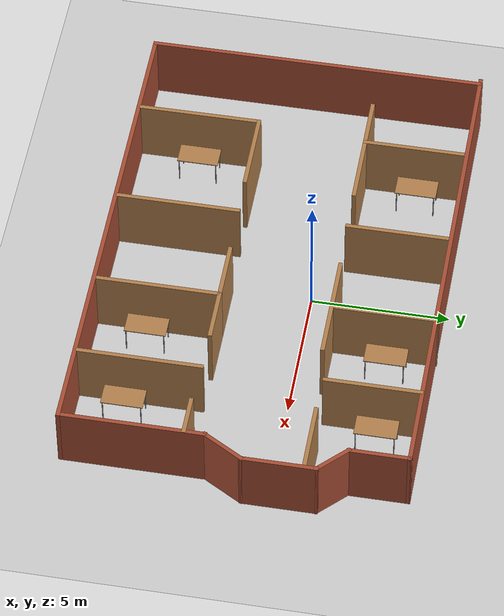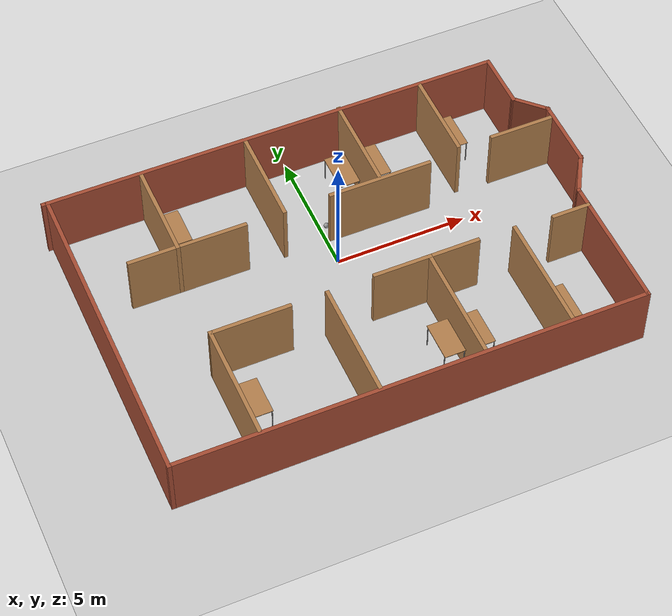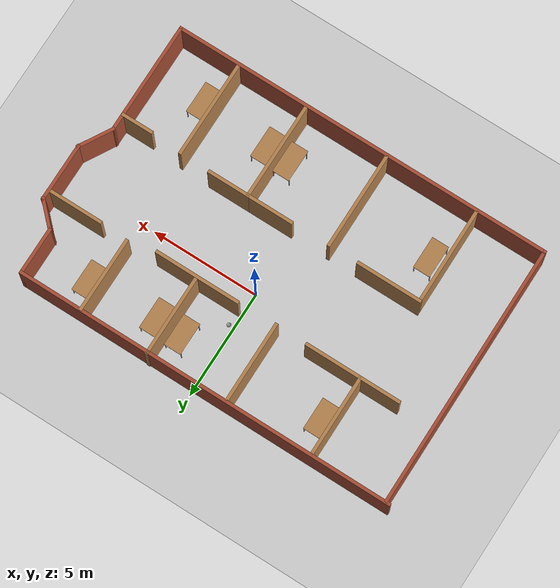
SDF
<sdf version="1.6">
 <world name="default">
  <light name="sun" type="directional">
   <pose>0 0 10 0 -0 0</pose>
   <diffuse>0.8 0.8 0.8 1</diffuse>
   <specular>0.2 0.2 0.2 1</specular>
   <attenuation>
    <range>1000</range>
    <constant>0.9</constant>
    <linear>0.01</linear>
    <quadratic>0.001</quadratic>
   </attenuation>
   <direction>-0.5 0.1 -0.9</direction>
  </light>
  <model name="ground_plane">
   <static>1</static>
   <link name="link">
    <collision name="collision">
     <geometry><plane><normal>0 0 1</normal><size>100 100</size></plane></geometry>
     <surface>
      <contact><collide_bitmask>65535</collide_bitmask></contact>
      <friction><ode><mu>100</mu><mu2>50</mu2></ode></friction>
     </surface>
    </collision>
    <visual name="visual">
     <cast_shadows>0</cast_shadows>
     <geometry><plane><normal>0 0 1</normal><size>100 100</size></plane></geometry>
     <material>
      <script><uri>file://media/materials/scripts/gazebo.material</uri><name>Gazebo/Grey</name></script>
     </material>
    </visual>
   </link>
  </model>
  <gravity>0 0 -9.8</gravity>
  <magnetic_field>6e-06 2.3e-05 -4.2e-05</magnetic_field>
  <atmosphere type="adiabatic"/>
  <physics name="default_physics" default="0" type="ode">
   <max_step_size>0.001</max_step_size>
   <real_time_factor>1</real_time_factor>
   <real_time_update_rate>1000</real_time_update_rate>
  </physics>
  <scene><ambient>0.4 0.4 0.4 1</ambient><background>0.7 0.7 0.7 1</background><shadows>1</shadows></scene>
  <spherical_coordinates>
   <surface_model>EARTH_WGS84</surface_model>
   <latitude_deg>0</latitude_deg>
   <longitude_deg>0</longitude_deg>
   <elevation>0</elevation>
   <heading_deg>0</heading_deg>
  </spherical_coordinates>
  <model name="mybuilding">
   <pose>-0.077377 -1.31008 0 0 -0 0</pose>
   <link name="Wall_10">
    <collision name="Wall_10_Collision">
     <geometry><box><size>17.75 0.15 2.5</size></box></geometry>
     <pose>0 0 1.25 0 -0 0</pose>
    </collision>
    <visual name="Wall_10_Visual">
     <pose>0 0 1.25 0 -0 0</pose>
     <geometry><box><size>17.75 0.15 2.5</size></box></geometry>
     <material>
      <script><uri>file://media/materials/scripts/gazebo.material</uri><name>Gazebo/Bricks</name></script>
      <ambient>1 1 1 1</ambient>
     </material>
     <meta><layer>0</layer></meta>
    </visual>
    <pose>-0.49283 6.05016 0 0 -0 0</pose>
   </link>
   <link name="Wall_11">
    <collision name="Wall_11_Collision">
     <geometry><box><size>2.25 0.15 2.5</size></box></geometry>
     <pose>0 0 1.25 0 -0 0</pose>
    </collision>
    <visual name="Wall_11_Visual">
     <pose>0 0 1.25 0 -0 0</pose>
     <geometry><box><size>2.25 0.15 2.5</size></box></geometry>
     <material>
      <script><uri>file://media/materials/scripts/gazebo.material</uri><name>Gazebo/Bricks</name></script>
      <ambient>1 1 1 1</ambient>
     </material>
     <meta><layer>0</layer></meta>
    </visual>
    <pose>8.30717 5.00016 0 0 0 -1.5708</pose>
   </link>
   <link name="Wall_12">
    <collision name="Wall_12_Collision">
     <geometry><box><size>1.5 0.15 2.5</size></box></geometry>
     <pose>0 0 1.25 0 -0 0</pose>
    </collision>
    <visual name="Wall_12_Visual">
     <pose>0 0 1.25 0 -0 0</pose>
     <geometry><box><size>1.5 0.15 2.5</size></box></geometry>
     <material>
      <script><uri>file://media/materials/scripts/gazebo.material</uri><name>Gazebo/Bricks</name></script>
      <ambient>1 1 1 1</ambient>
     </material>
     <meta><layer>0</layer></meta>
    </visual>
    <pose>8.78447 3.47287 0 0 0 -0.785398</pose>
   </link>
   <link name="Wall_13">
    <collision name="Wall_13_Collision">
     <geometry><box><size>2.75 0.15 2.5</size></box></geometry>
     <pose>0 0 1.25 0 -0 0</pose>
    </collision>
    <visual name="Wall_13_Visual">
     <pose>0 0 1.25 0 -0 0</pose>
     <geometry><box><size>2.75 0.15 2.5</size></box></geometry>
     <material>
      <script><uri>file://media/materials/scripts/gazebo.material</uri><name>Gazebo/Bricks</name></script>
      <ambient>1 1 1 1</ambient>
     </material>
     <meta><layer>0</layer></meta>
    </visual>
    <pose>9.26177 1.69557 0 0 0 -1.5708</pose>
   </link>
   <link name="Wall_14">
    <collision name="Wall_14_Collision">
     <geometry><box><size>1.75 0.15 2.5</size></box></geometry>
     <pose>0 0 1.25 0 -0 0</pose>
    </collision>
    <visual name="Wall_14_Visual">
     <pose>0 0 1.25 0 -0 0</pose>
     <geometry><box><size>1.75 0.15 2.5</size></box></geometry>
     <material>
      <script><uri>file://media/materials/scripts/gazebo.material</uri><name>Gazebo/Bricks</name></script>
      <ambient>1 1 1 1</ambient>
     </material>
     <meta><layer>0</layer></meta>
    </visual>
    <pose>8.86176 -0.297251 0 0 0 -2.0944</pose>
   </link>
   <link name="Wall_15">
    <collision name="Wall_15_Collision">
     <geometry><box><size>5.25 0.15 2.5</size></box></geometry>
     <pose>0 0 1.25 0 -0 0</pose>
    </collision>
    <visual name="Wall_15_Visual">
     <pose>0 0 1.25 0 -0 0</pose>
     <geometry><box><size>5.25 0.15 2.5</size></box></geometry>
     <material>
      <script><uri>file://media/materials/scripts/gazebo.material</uri><name>Gazebo/Bricks</name></script>
      <ambient>1 1 1 1</ambient>
     </material>
     <meta><layer>0</layer></meta>
    </visual>
    <pose>8.46176 -3.54007 0 0 0 -1.5708</pose>
   </link>
   <link name="Wall_16">
    <collision name="Wall_16_Collision">
     <geometry><box><size>17.75 0.15 2.5</size></box></geometry>
     <pose>0 0 1.25 0 -0 0</pose>
    </collision>
    <visual name="Wall_16_Visual">
     <pose>0 0 1.25 0 -0 0</pose>
     <geometry><box><size>17.75 0.15 2.5</size></box></geometry>
     <material>
      <script><uri>file://media/materials/scripts/gazebo.material</uri><name>Gazebo/Bricks</name></script>
      <ambient>1 1 1 1</ambient>
     </material>
     <meta><layer>0</layer></meta>
    </visual>
    <pose>-0.338236 -6.09007 0 0 -0 3.14159</pose>
   </link>
   <link name="Wall_17">
    <collision name="Wall_17_Collision">
     <geometry><box><size>12.25 0.15 2.5</size></box></geometry>
     <pose>0 0 1.25 0 -0 0</pose>
    </collision>
    <visual name="Wall_17_Visual">
     <pose>0 0 1.25 0 -0 0</pose>
     <geometry><box><size>12.25 0.15 2.5</size></box></geometry>
     <material>
      <script><uri>file://media/materials/scripts/gazebo.material</uri><name>Gazebo/Bricks</name></script>
      <ambient>1 1 1 1</ambient>
     </material>
     <meta><layer>0</layer></meta>
    </visual>
    <pose>-9.13824 -0.040072 0 0 -0 1.5708</pose>
   </link>
   <link name="Wall_27">
    <collision name="Wall_27_Collision">
     <geometry><box><size>3.067 0.15 2.5</size></box></geometry>
     <pose>0 0 1.25 0 -0 0</pose>
    </collision>
    <visual name="Wall_27_Visual">
     <pose>0 0 1.25 0 -0 0</pose>
     <geometry><box><size>3.067 0.15 2.5</size></box></geometry>
     <material>
      <script><uri>file://media/materials/scripts/gazebo.material</uri><name>Gazebo/Wood</name></script>
      <ambient>1 1 1 1</ambient>
     </material>
     <meta><layer>0</layer></meta>
    </visual>
    <pose>-4.48112 -1.63592 0 0 -0 3.14159</pose>
   </link>
   <link name="Wall_28">
    <collision name="Wall_28_Collision">
     <geometry><box><size>4.5 0.15 2.5</size></box></geometry>
     <pose>0 0 1.25 0 -0 0</pose>
    </collision>
    <visual name="Wall_28_Visual">
     <pose>0 0 1.25 0 -0 0</pose>
     <geometry><box><size>4.5 0.15 2.5</size></box></geometry>
     <material>
      <script><uri>file://media/materials/scripts/gazebo.material</uri><name>Gazebo/Wood</name></script>
      <ambient>1 1 1 1</ambient>
     </material>
     <meta><layer>0</layer></meta>
    </visual>
    <pose>-5.93341 -3.81116 0 0 0 -1.56794</pose>
   </link>
   <link name="Wall_33">
    <collision name="Wall_33_Collision">
     <geometry><box><size>4.5 0.15 2.5</size></box></geometry>
     <pose>0 0 1.25 0 -0 0</pose>
    </collision>
    <visual name="Wall_33_Visual">
     <pose>0 0 1.25 0 -0 0</pose>
     <geometry><box><size>4.5 0.15 2.5</size></box></geometry>
     <material>
      <script><uri>file://media/materials/scripts/gazebo.material</uri><name>Gazebo/Wood</name></script>
      <ambient>1 1 1 1</ambient>
     </material>
     <meta><layer>0</layer></meta>
    </visual>
    <pose>-1.60627 -3.8114 0 0 0 -1.5708</pose>
   </link>
   <link name="Wall_36">
    <collision name="Wall_36_Collision">
     <geometry><box><size>4.5 0.15 2.5</size></box></geometry>
     <pose>0 0 1.25 0 -0 0</pose>
    </collision>
    <visual name="Wall_36_Visual">
     <pose>0 0 1.25 0 -0 0</pose>
     <geometry><box><size>4.5 0.15 2.5</size></box></geometry>
     <material>
      <script><uri>file://media/materials/scripts/gazebo.material</uri><name>Gazebo/Wood</name></script>
      <ambient>1 1 1 1</ambient>
     </material>
     <meta><layer>0</layer></meta>
    </visual>
    <pose>2.29548 -3.77093 0 0 0 -1.57075</pose>
   </link>
   <link name="Wall_40">
    <collision name="Wall_40_Collision">
     <geometry><box><size>4.5 0.15 2.5</size></box></geometry>
     <pose>0 0 1.25 0 -0 0</pose>
    </collision>
    <visual name="Wall_40_Visual">
     <pose>0 0 1.25 0 -0 0</pose>
     <geometry><box><size>4.5 0.15 2.5</size></box></geometry>
     <material>
      <script><uri>file://media/materials/scripts/gazebo.material</uri><name>Gazebo/Wood</name></script>
      <ambient>1 1 1 1</ambient>
     </material>
     <meta><layer>0</layer></meta>
    </visual>
    <pose>5.59482 -3.8114 0 0 0 -1.5708</pose>
   </link>
   <link name="Wall_45">
    <collision name="Wall_45_Collision">
     <geometry><box><size>2.25 0.15 2.5</size></box></geometry>
     <pose>0 0 1.25 0 -0 0</pose>
    </collision>
    <visual name="Wall_45_Visual">
     <pose>0 0 1.25 0 -0 0</pose>
     <geometry><box><size>2.25 0.15 2.5</size></box></geometry>
     <material>
      <script><uri>file://media/materials/scripts/gazebo.material</uri><name>Gazebo/Wood</name></script>
      <ambient>1 1 1 1</ambient>
     </material>
     <meta><layer>0</layer></meta>
    </visual>
    <pose>1.24538 -1.59592 0 0 -0 3.14159</pose>
   </link>
   <link name="Wall_47">
    <collision name="Wall_47_Collision">
     <geometry><box><size>2 0.15 2.5</size></box></geometry>
     <pose>0 0 1.25 0 -0 0</pose>
    </collision>
    <visual name="Wall_47_Visual">
     <pose>0 0 1.25 0 -0 0</pose>
     <geometry><box><size>2 0.15 2.5</size></box></geometry>
     <material>
      <script><uri>file://media/materials/scripts/gazebo.material</uri><name>Gazebo/Wood</name></script>
      <ambient>1 1 1 1</ambient>
     </material>
     <meta><layer>0</layer></meta>
    </visual>
    <pose>3.22038 -1.59592 0 0 -0 0</pose>
   </link>
   <link name="Wall_49">
    <collision name="Wall_49_Collision">
     <geometry><box><size>1.5 0.15 2.5</size></box></geometry>
     <pose>0 0 1.25 0 -0 0</pose>
    </collision>
    <visual name="Wall_49_Visual">
     <pose>0 0 1.25 0 -0 0</pose>
     <geometry><box><size>1.5 0.15 2.5</size></box></geometry>
     <material>
      <script><uri>file://media/materials/scripts/gazebo.material</uri><name>Gazebo/Wood</name></script>
      <ambient>1 1 1 1</ambient>
     </material>
     <meta><layer>0</layer></meta>
    </visual>
    <pose>7.76668 -1.71731 0 0 -0 0</pose>
   </link>
   <link name="Wall_51">
    <collision name="Wall_51_Collision">
     <geometry><box><size>3.5 0.15 2.5</size></box></geometry>
     <pose>0 0 1.25 0 -0 0</pose>
    </collision>
    <visual name="Wall_51_Visual">
     <pose>0 0 1.25 0 -0 0</pose>
     <geometry><box><size>3.5 0.15 2.5</size></box></geometry>
     <material>
      <script><uri>file://media/materials/scripts/gazebo.material</uri><name>Gazebo/Wood</name></script>
      <ambient>1 1 1 1</ambient>
     </material>
     <meta><layer>0</layer></meta>
    </visual>
    <pose>5.433 4.33471 0 0 0 -1.5708</pose>
   </link>
   <link name="Wall_53">
    <collision name="Wall_53_Collision">
     <geometry><box><size>2.5 0.15 2.5</size></box></geometry>
     <pose>0 0 1.25 0 -0 0</pose>
    </collision>
    <visual name="Wall_53_Visual">
     <pose>0 0 1.25 0 -0 0</pose>
     <geometry><box><size>2.5 0.15 2.5</size></box></geometry>
     <material>
      <script><uri>file://media/materials/scripts/gazebo.material</uri><name>Gazebo/Wood</name></script>
      <ambient>1 1 1 1</ambient>
     </material>
     <meta><layer>0</layer></meta>
    </visual>
    <pose>7.94303 2.57098 0 0 -0 0</pose>
   </link>
   <link name="Wall_55">
    <collision name="Wall_55_Collision">
     <geometry><box><size>4 0.15 2.5</size></box></geometry>
     <pose>0 0 1.25 0 -0 0</pose>
    </collision>
    <visual name="Wall_55_Visual">
     <pose>0 0 1.25 0 -0 0</pose>
     <geometry><box><size>4 0.15 2.5</size></box></geometry>
     <material>
      <script><uri>file://media/materials/scripts/gazebo.material</uri><name>Gazebo/Wood</name></script>
      <ambient>1 1 1 1</ambient>
     </material>
     <meta><layer>0</layer></meta>
    </visual>
    <pose>2.1875 2.3687 0 0 -0 3.14159</pose>
   </link>
   <link name="Wall_61">
    <collision name="Wall_61_Collision">
     <geometry><box><size>3.75 0.15 2.5</size></box></geometry>
     <pose>0 0 1.25 0 -0 0</pose>
    </collision>
    <visual name="Wall_61_Visual">
     <pose>0 0 1.25 0 -0 0</pose>
     <geometry><box><size>3.75 0.15 2.5</size></box></geometry>
     <material>
      <script><uri>file://media/materials/scripts/gazebo.material</uri><name>Gazebo/Wood</name></script>
      <ambient>1 1 1 1</ambient>
     </material>
     <meta><layer>0</layer></meta>
    </visual>
    <pose>2.19655 4.29007 0 0 -0 1.5708</pose>
   </link>
   <link name="Wall_64">
    <collision name="Wall_64_Collision">
     <geometry><box><size>3.75 0.15 2.5</size></box></geometry>
     <pose>0 0 1.25 0 -0 0</pose>
    </collision>
    <visual name="Wall_64_Visual">
     <pose>0 0 1.25 0 -0 0</pose>
     <geometry><box><size>3.75 0.15 2.5</size></box></geometry>
     <material>
      <script><uri>file://media/materials/scripts/gazebo.material</uri><name>Gazebo/Wood</name></script>
      <ambient>1 1 1 1</ambient>
     </material>
     <meta><layer>0</layer></meta>
    </visual>
    <pose>-1.56581 4.12825 0 0 -0 1.5708</pose>
   </link>
   <link name="Wall_66">
    <collision name="Wall_66_Collision">
     <geometry><box><size>4.5 0.15 2.5</size></box></geometry>
     <pose>0 0 1.25 0 -0 0</pose>
    </collision>
    <visual name="Wall_66_Visual">
     <pose>0 0 1.25 0 -0 0</pose>
     <geometry><box><size>4.5 0.15 2.5</size></box></geometry>
     <material>
      <script><uri>file://media/materials/scripts/gazebo.material</uri><name>Gazebo/Wood</name></script>
      <ambient>1 1 1 1</ambient>
     </material>
     <meta><layer>0</layer></meta>
    </visual>
    <pose>-5.23767 2.32825 0 0 -0 3.14159</pose>
   </link>
   <link name="Wall_70">
    <collision name="Wall_70_Collision">
     <geometry><box><size>3.75 0.15 2.5</size></box></geometry>
     <pose>0 0 1.25 0 -0 0</pose>
    </collision>
    <visual name="Wall_70_Visual">
     <pose>0 0 1.25 0 -0 0</pose>
     <geometry><box><size>3.75 0.15 2.5</size></box></geometry>
     <material>
      <script><uri>file://media/materials/scripts/gazebo.material</uri><name>Gazebo/Wood</name></script>
      <ambient>1 1 1 1</ambient>
     </material>
     <meta><layer>0</layer></meta>
    </visual>
    <pose>-5.61137 4.12825 0 0 -0 1.5708</pose>
   </link>
   <static>1</static>
  </model>
  <model name="table">
   <static>1</static>
   <link name="link">
    <collision name="surface">
     <pose>0 0 1 0 -0 0</pose>
     <geometry><box><size>1.5 0.8 0.03</size></box></geometry>
     <surface><friction><ode><mu>0.6</mu><mu2>0.6</mu2></ode></friction></surface>
    </collision>
    <visual name="visual1">
     <pose>0 0 1 0 -0 0</pose>
     <geometry><box><size>1.5 0.8 0.03</size></box></geometry>
     <material>
      <script><uri>file://media/materials/scripts/gazebo.material</uri><name>Gazebo/Wood</name></script>
     </material>
    </visual>
    <collision name="front_left_leg">
     <pose>0.68 0.38 0.5 0 -0 0</pose>
     <geometry><cylinder><radius>0.02</radius><length>1</length></cylinder></geometry>
    </collision>
    <visual name="front_left_leg">
     <pose>0.68 0.38 0.5 0 -0 0</pose>
     <geometry><cylinder><radius>0.02</radius><length>1</length></cylinder></geometry>
     <material>
      <script><uri>file://media/materials/scripts/gazebo.material</uri><name>Gazebo/Grey</name></script>
     </material>
    </visual>
    <collision name="front_right_leg">
     <pose>0.68 -0.38 0.5 0 -0 0</pose>
     <geometry><cylinder><radius>0.02</radius><length>1</length></cylinder></geometry>
    </collision>
    <visual name="front_right_leg">
     <pose>0.68 -0.38 0.5 0 -0 0</pose>
     <geometry><cylinder><radius>0.02</radius><length>1</length></cylinder></geometry>
     <material>
      <script><uri>file://media/materials/scripts/gazebo.material</uri><name>Gazebo/Grey</name></script>
     </material>
    </visual>
    <collision name="back_right_leg">
     <pose>-0.68 -0.38 0.5 0 -0 0</pose>
     <geometry><cylinder><radius>0.02</radius><length>1</length></cylinder></geometry>
    </collision>
    <visual name="back_right_leg">
     <pose>-0.68 -0.38 0.5 0 -0 0</pose>
     <geometry><cylinder><radius>0.02</radius><length>1</length></cylinder></geometry>
     <material>
      <script><uri>file://media/materials/scripts/gazebo.material</uri><name>Gazebo/Grey</name></script>
     </material>
    </visual>
    <collision name="back_left_leg">
     <pose>-0.68 0.38 0.5 0 -0 0</pose>
     <geometry><cylinder><radius>0.02</radius><length>1</length></cylinder></geometry>
    </collision>
    <visual name="back_left_leg">
     <pose>-0.68 0.38 0.5 0 -0 0</pose>
     <geometry><cylinder><radius>0.02</radius><length>1</length></cylinder></geometry>
     <material>
      <script><uri>file://media/materials/scripts/gazebo.material</uri><name>Gazebo/Grey</name></script>
     </material>
    </visual>
   </link>
   <pose>-5.32689 -5.05203 0 0 0 -1.57312</pose>
  </model>
  <model name="table_clone">
   <static>1</static>
   <link name="link">
    <collision name="surface">
     <pose>0 0 1 0 -0 0</pose>
     <geometry><box><size>1.5 0.8 0.03</size></box></geometry>
     <surface><friction><ode><mu>0.6</mu><mu2>0.6</mu2></ode></friction></surface>
    </collision>
    <visual name="visual1">
     <pose>0 0 1 0 -0 0</pose>
     <geometry><box><size>1.5 0.8 0.03</size></box></geometry>
     <material>
      <script><uri>file://media/materials/scripts/gazebo.material</uri><name>Gazebo/Wood</name></script>
     </material>
    </visual>
    <collision name="front_left_leg">
     <pose>0.68 0.38 0.5 0 -0 0</pose>
     <geometry><cylinder><radius>0.02</radius><length>1</length></cylinder></geometry>
    </collision>
    <visual name="front_left_leg">
     <pose>0.68 0.38 0.5 0 -0 0</pose>
     <geometry><cylinder><radius>0.02</radius><length>1</length></cylinder></geometry>
     <material>
      <script><uri>file://media/materials/scripts/gazebo.material</uri><name>Gazebo/Grey</name></script>
     </material>
    </visual>
    <collision name="front_right_leg">
     <pose>0.68 -0.38 0.5 0 -0 0</pose>
     <geometry><cylinder><radius>0.02</radius><length>1</length></cylinder></geometry>
    </collision>
    <visual name="front_right_leg">
     <pose>0.68 -0.38 0.5 0 -0 0</pose>
     <geometry><cylinder><radius>0.02</radius><length>1</length></cylinder></geometry>
     <material>
      <script><uri>file://media/materials/scripts/gazebo.material</uri><name>Gazebo/Grey</name></script>
     </material>
    </visual>
    <collision name="back_right_leg">
     <pose>-0.68 -0.38 0.5 0 -0 0</pose>
     <geometry><cylinder><radius>0.02</radius><length>1</length></cylinder></geometry>
    </collision>
    <visual name="back_right_leg">
     <pose>-0.68 -0.38 0.5 0 -0 0</pose>
     <geometry><cylinder><radius>0.02</radius><length>1</length></cylinder></geometry>
     <material>
      <script><uri>file://media/materials/scripts/gazebo.material</uri><name>Gazebo/Grey</name></script>
     </material>
    </visual>
    <collision name="back_left_leg">
     <pose>-0.68 0.38 0.5 0 -0 0</pose>
     <geometry><cylinder><radius>0.02</radius><length>1</length></cylinder></geometry>
    </collision>
    <visual name="back_left_leg">
     <pose>-0.68 0.38 0.5 0 -0 0</pose>
     <geometry><cylinder><radius>0.02</radius><length>1</length></cylinder></geometry>
     <material>
      <script><uri>file://media/materials/scripts/gazebo.material</uri><name>Gazebo/Grey</name></script>
     </material>
    </visual>
   </link>
   <pose>1.73466 -5.37641 0 0 0 -1.57312</pose>
  </model>
  <model name="table_clone_0">
   <static>1</static>
   <link name="link">
    <collision name="surface">
     <pose>0 0 1 0 -0 0</pose>
     <geometry><box><size>1.5 0.8 0.03</size></box></geometry>
     <surface><friction><ode><mu>0.6</mu><mu2>0.6</mu2></ode></friction></surface>
    </collision>
    <visual name="visual1">
     <pose>0 0 1 0 -0 0</pose>
     <geometry><box><size>1.5 0.8 0.03</size></box></geometry>
     <material>
      <script><uri>file://media/materials/scripts/gazebo.material</uri><name>Gazebo/Wood</name></script>
     </material>
    </visual>
    <collision name="front_left_leg">
     <pose>0.68 0.38 0.5 0 -0 0</pose>
     <geometry><cylinder><radius>0.02</radius><length>1</length></cylinder></geometry>
    </collision>
    <visual name="front_left_leg">
     <pose>0.68 0.38 0.5 0 -0 0</pose>
     <geometry><cylinder><radius>0.02</radius><length>1</length></cylinder></geometry>
     <material>
      <script><uri>file://media/materials/scripts/gazebo.material</uri><name>Gazebo/Grey</name></script>
     </material>
    </visual>
    <collision name="front_right_leg">
     <pose>0.68 -0.38 0.5 0 -0 0</pose>
     <geometry><cylinder><radius>0.02</radius><length>1</length></cylinder></geometry>
    </collision>
    <visual name="front_right_leg">
     <pose>0.68 -0.38 0.5 0 -0 0</pose>
     <geometry><cylinder><radius>0.02</radius><length>1</length></cylinder></geometry>
     <material>
      <script><uri>file://media/materials/scripts/gazebo.material</uri><name>Gazebo/Grey</name></script>
     </material>
    </visual>
    <collision name="back_right_leg">
     <pose>-0.68 -0.38 0.5 0 -0 0</pose>
     <geometry><cylinder><radius>0.02</radius><length>1</length></cylinder></geometry>
    </collision>
    <visual name="back_right_leg">
     <pose>-0.68 -0.38 0.5 0 -0 0</pose>
     <geometry><cylinder><radius>0.02</radius><length>1</length></cylinder></geometry>
     <material>
      <script><uri>file://media/materials/scripts/gazebo.material</uri><name>Gazebo/Grey</name></script>
     </material>
    </visual>
    <collision name="back_left_leg">
     <pose>-0.68 0.38 0.5 0 -0 0</pose>
     <geometry><cylinder><radius>0.02</radius><length>1</length></cylinder></geometry>
    </collision>
    <visual name="back_left_leg">
     <pose>-0.68 0.38 0.5 0 -0 0</pose>
     <geometry><cylinder><radius>0.02</radius><length>1</length></cylinder></geometry>
     <material>
      <script><uri>file://media/materials/scripts/gazebo.material</uri><name>Gazebo/Grey</name></script>
     </material>
    </visual>
   </link>
   <pose>2.85507 -5.42184 0 0 0 -1.57312</pose>
  </model>
  <model name="table_clone_1">
   <static>1</static>
   <link name="link">
    <collision name="surface">
     <pose>0 0 1 0 -0 0</pose>
     <geometry><box><size>1.5 0.8 0.03</size></box></geometry>
     <surface><friction><ode><mu>0.6</mu><mu2>0.6</mu2></ode></friction></surface>
    </collision>
    <visual name="visual1">
     <pose>0 0 1 0 -0 0</pose>
     <geometry><box><size>1.5 0.8 0.03</size></box></geometry>
     <material>
      <script><uri>file://media/materials/scripts/gazebo.material</uri><name>Gazebo/Wood</name></script>
     </material>
    </visual>
    <collision name="front_left_leg">
     <pose>0.68 0.38 0.5 0 -0 0</pose>
     <geometry><cylinder><radius>0.02</radius><length>1</length></cylinder></geometry>
    </collision>
    <visual name="front_left_leg">
     <pose>0.68 0.38 0.5 0 -0 0</pose>
     <geometry><cylinder><radius>0.02</radius><length>1</length></cylinder></geometry>
     <material>
      <script><uri>file://media/materials/scripts/gazebo.material</uri><name>Gazebo/Grey</name></script>
     </material>
    </visual>
    <collision name="front_right_leg">
     <pose>0.68 -0.38 0.5 0 -0 0</pose>
     <geometry><cylinder><radius>0.02</radius><length>1</length></cylinder></geometry>
    </collision>
    <visual name="front_right_leg">
     <pose>0.68 -0.38 0.5 0 -0 0</pose>
     <geometry><cylinder><radius>0.02</radius><length>1</length></cylinder></geometry>
     <material>
      <script><uri>file://media/materials/scripts/gazebo.material</uri><name>Gazebo/Grey</name></script>
     </material>
    </visual>
    <collision name="back_right_leg">
     <pose>-0.68 -0.38 0.5 0 -0 0</pose>
     <geometry><cylinder><radius>0.02</radius><length>1</length></cylinder></geometry>
    </collision>
    <visual name="back_right_leg">
     <pose>-0.68 -0.38 0.5 0 -0 0</pose>
     <geometry><cylinder><radius>0.02</radius><length>1</length></cylinder></geometry>
     <material>
      <script><uri>file://media/materials/scripts/gazebo.material</uri><name>Gazebo/Grey</name></script>
     </material>
    </visual>
    <collision name="back_left_leg">
     <pose>-0.68 0.38 0.5 0 -0 0</pose>
     <geometry><cylinder><radius>0.02</radius><length>1</length></cylinder></geometry>
    </collision>
    <visual name="back_left_leg">
     <pose>-0.68 0.38 0.5 0 -0 0</pose>
     <geometry><cylinder><radius>0.02</radius><length>1</length></cylinder></geometry>
     <material>
      <script><uri>file://media/materials/scripts/gazebo.material</uri><name>Gazebo/Grey</name></script>
     </material>
    </visual>
   </link>
   <pose>2.77709 3.11382 0 0 0 -1.57312</pose>
  </model>
  <model name="table_clone_2">
   <static>1</static>
   <link name="link">
    <collision name="surface">
     <pose>0 0 1 0 -0 0</pose>
     <geometry><box><size>1.5 0.8 0.03</size></box></geometry>
     <surface><friction><ode><mu>0.6</mu><mu2>0.6</mu2></ode></friction></surface>
    </collision>
    <visual name="visual1">
     <pose>0 0 1 0 -0 0</pose>
     <geometry><box><size>1.5 0.8 0.03</size></box></geometry>
     <material>
      <script><uri>file://media/materials/scripts/gazebo.material</uri><name>Gazebo/Wood</name></script>
     </material>
    </visual>
    <collision name="front_left_leg">
     <pose>0.68 0.38 0.5 0 -0 0</pose>
     <geometry><cylinder><radius>0.02</radius><length>1</length></cylinder></geometry>
    </collision>
    <visual name="front_left_leg">
     <pose>0.68 0.38 0.5 0 -0 0</pose>
     <geometry><cylinder><radius>0.02</radius><length>1</length></cylinder></geometry>
     <material>
      <script><uri>file://media/materials/scripts/gazebo.material</uri><name>Gazebo/Grey</name></script>
     </material>
    </visual>
    <collision name="front_right_leg">
     <pose>0.68 -0.38 0.5 0 -0 0</pose>
     <geometry><cylinder><radius>0.02</radius><length>1</length></cylinder></geometry>
    </collision>
    <visual name="front_right_leg">
     <pose>0.68 -0.38 0.5 0 -0 0</pose>
     <geometry><cylinder><radius>0.02</radius><length>1</length></cylinder></geometry>
     <material>
      <script><uri>file://media/materials/scripts/gazebo.material</uri><name>Gazebo/Grey</name></script>
     </material>
    </visual>
    <collision name="back_right_leg">
     <pose>-0.68 -0.38 0.5 0 -0 0</pose>
     <geometry><cylinder><radius>0.02</radius><length>1</length></cylinder></geometry>
    </collision>
    <visual name="back_right_leg">
     <pose>-0.68 -0.38 0.5 0 -0 0</pose>
     <geometry><cylinder><radius>0.02</radius><length>1</length></cylinder></geometry>
     <material>
      <script><uri>file://media/materials/scripts/gazebo.material</uri><name>Gazebo/Grey</name></script>
     </material>
    </visual>
    <collision name="back_left_leg">
     <pose>-0.68 0.38 0.5 0 -0 0</pose>
     <geometry><cylinder><radius>0.02</radius><length>1</length></cylinder></geometry>
    </collision>
    <visual name="back_left_leg">
     <pose>-0.68 0.38 0.5 0 -0 0</pose>
     <geometry><cylinder><radius>0.02</radius><length>1</length></cylinder></geometry>
     <material>
      <script><uri>file://media/materials/scripts/gazebo.material</uri><name>Gazebo/Grey</name></script>
     </material>
    </visual>
   </link>
   <pose>1.53568 3.16278 0 0 0 -1.57312</pose>
  </model>
  <model name="table_clone_3">
   <static>1</static>
   <link name="link">
    <collision name="surface">
     <pose>0 0 1 0 -0 0</pose>
     <geometry><box><size>1.5 0.8 0.03</size></box></geometry>
     <surface><friction><ode><mu>0.6</mu><mu2>0.6</mu2></ode></friction></surface>
    </collision>
    <visual name="visual1">
     <pose>0 0 1 0 -0 0</pose>
     <geometry><box><size>1.5 0.8 0.03</size></box></geometry>
     <material>
      <script><uri>file://media/materials/scripts/gazebo.material</uri><name>Gazebo/Wood</name></script>
     </material>
    </visual>
    <collision name="front_left_leg">
     <pose>0.68 0.38 0.5 0 -0 0</pose>
     <geometry><cylinder><radius>0.02</radius><length>1</length></cylinder></geometry>
    </collision>
    <visual name="front_left_leg">
     <pose>0.68 0.38 0.5 0 -0 0</pose>
     <geometry><cylinder><radius>0.02</radius><length>1</length></cylinder></geometry>
     <material>
      <script><uri>file://media/materials/scripts/gazebo.material</uri><name>Gazebo/Grey</name></script>
     </material>
    </visual>
    <collision name="front_right_leg">
     <pose>0.68 -0.38 0.5 0 -0 0</pose>
     <geometry><cylinder><radius>0.02</radius><length>1</length></cylinder></geometry>
    </collision>
    <visual name="front_right_leg">
     <pose>0.68 -0.38 0.5 0 -0 0</pose>
     <geometry><cylinder><radius>0.02</radius><length>1</length></cylinder></geometry>
     <material>
      <script><uri>file://media/materials/scripts/gazebo.material</uri><name>Gazebo/Grey</name></script>
     </material>
    </visual>
    <collision name="back_right_leg">
     <pose>-0.68 -0.38 0.5 0 -0 0</pose>
     <geometry><cylinder><radius>0.02</radius><length>1</length></cylinder></geometry>
    </collision>
    <visual name="back_right_leg">
     <pose>-0.68 -0.38 0.5 0 -0 0</pose>
     <geometry><cylinder><radius>0.02</radius><length>1</length></cylinder></geometry>
     <material>
      <script><uri>file://media/materials/scripts/gazebo.material</uri><name>Gazebo/Grey</name></script>
     </material>
    </visual>
    <collision name="back_left_leg">
     <pose>-0.68 0.38 0.5 0 -0 0</pose>
     <geometry><cylinder><radius>0.02</radius><length>1</length></cylinder></geometry>
    </collision>
    <visual name="back_left_leg">
     <pose>-0.68 0.38 0.5 0 -0 0</pose>
     <geometry><cylinder><radius>0.02</radius><length>1</length></cylinder></geometry>
     <material>
      <script><uri>file://media/materials/scripts/gazebo.material</uri><name>Gazebo/Grey</name></script>
     </material>
    </visual>
   </link>
   <pose>-5.11913 3.03497 0 0 0 -1.57312</pose>
  </model>
  <model name="table_clone_4">
   <static>1</static>
   <link name="link">
    <collision name="surface">
     <pose>0 0 1 0 -0 0</pose>
     <geometry><box><size>1.5 0.8 0.03</size></box></geometry>
     <surface><friction><ode><mu>0.6</mu><mu2>0.6</mu2></ode></friction></surface>
    </collision>
    <visual name="visual1">
     <pose>0 0 1 0 -0 0</pose>
     <geometry><box><size>1.5 0.8 0.03</size></box></geometry>
     <material>
      <script><uri>file://media/materials/scripts/gazebo.material</uri><name>Gazebo/Wood</name></script>
     </material>
    </visual>
    <collision name="front_left_leg">
     <pose>0.68 0.38 0.5 0 -0 0</pose>
     <geometry><cylinder><radius>0.02</radius><length>1</length></cylinder></geometry>
    </collision>
    <visual name="front_left_leg">
     <pose>0.68 0.38 0.5 0 -0 0</pose>
     <geometry><cylinder><radius>0.02</radius><length>1</length></cylinder></geometry>
     <material>
      <script><uri>file://media/materials/scripts/gazebo.material</uri><name>Gazebo/Grey</name></script>
     </material>
    </visual>
    <collision name="front_right_leg">
     <pose>0.68 -0.38 0.5 0 -0 0</pose>
     <geometry><cylinder><radius>0.02</radius><length>1</length></cylinder></geometry>
    </collision>
    <visual name="front_right_leg">
     <pose>0.68 -0.38 0.5 0 -0 0</pose>
     <geometry><cylinder><radius>0.02</radius><length>1</length></cylinder></geometry>
     <material>
      <script><uri>file://media/materials/scripts/gazebo.material</uri><name>Gazebo/Grey</name></script>
     </material>
    </visual>
    <collision name="back_right_leg">
     <pose>-0.68 -0.38 0.5 0 -0 0</pose>
     <geometry><cylinder><radius>0.02</radius><length>1</length></cylinder></geometry>
    </collision>
    <visual name="back_right_leg">
     <pose>-0.68 -0.38 0.5 0 -0 0</pose>
     <geometry><cylinder><radius>0.02</radius><length>1</length></cylinder></geometry>
     <material>
      <script><uri>file://media/materials/scripts/gazebo.material</uri><name>Gazebo/Grey</name></script>
     </material>
    </visual>
    <collision name="back_left_leg">
     <pose>-0.68 0.38 0.5 0 -0 0</pose>
     <geometry><cylinder><radius>0.02</radius><length>1</length></cylinder></geometry>
    </collision>
    <visual name="back_left_leg">
     <pose>-0.68 0.38 0.5 0 -0 0</pose>
     <geometry><cylinder><radius>0.02</radius><length>1</length></cylinder></geometry>
     <material>
      <script><uri>file://media/materials/scripts/gazebo.material</uri><name>Gazebo/Grey</name></script>
     </material>
    </visual>
   </link>
   <pose>5.98352 3.27326 0 0 0 -1.57312</pose>
  </model>
  <model name="table_clone_5">
   <static>1</static>
   <link name="link">
    <collision name="surface">
     <pose>0 0 1 0 -0 0</pose>
     <geometry><box><size>1.5 0.8 0.03</size></box></geometry>
     <surface><friction><ode><mu>0.6</mu><mu2>0.6</mu2></ode></friction></surface>
    </collision>
    <visual name="visual1">
     <pose>0 0 1 0 -0 0</pose>
     <geometry><box><size>1.5 0.8 0.03</size></box></geometry>
     <material>
      <script><uri>file://media/materials/scripts/gazebo.material</uri><name>Gazebo/Wood</name></script>
     </material>
    </visual>
    <collision name="front_left_leg">
     <pose>0.68 0.38 0.5 0 -0 0</pose>
     <geometry><cylinder><radius>0.02</radius><length>1</length></cylinder></geometry>
    </collision>
    <visual name="front_left_leg">
     <pose>0.68 0.38 0.5 0 -0 0</pose>
     <geometry><cylinder><radius>0.02</radius><length>1</length></cylinder></geometry>
     <material>
      <script><uri>file://media/materials/scripts/gazebo.material</uri><name>Gazebo/Grey</name></script>
     </material>
    </visual>
    <collision name="front_right_leg">
     <pose>0.68 -0.38 0.5 0 -0 0</pose>
     <geometry><cylinder><radius>0.02</radius><length>1</length></cylinder></geometry>
    </collision>
    <visual name="front_right_leg">
     <pose>0.68 -0.38 0.5 0 -0 0</pose>
     <geometry><cylinder><radius>0.02</radius><length>1</length></cylinder></geometry>
     <material>
      <script><uri>file://media/materials/scripts/gazebo.material</uri><name>Gazebo/Grey</name></script>
     </material>
    </visual>
    <collision name="back_right_leg">
     <pose>-0.68 -0.38 0.5 0 -0 0</pose>
     <geometry><cylinder><radius>0.02</radius><length>1</length></cylinder></geometry>
    </collision>
    <visual name="back_right_leg">
     <pose>-0.68 -0.38 0.5 0 -0 0</pose>
     <geometry><cylinder><radius>0.02</radius><length>1</length></cylinder></geometry>
     <material>
      <script><uri>file://media/materials/scripts/gazebo.material</uri><name>Gazebo/Grey</name></script>
     </material>
    </visual>
    <collision name="back_left_leg">
     <pose>-0.68 0.38 0.5 0 -0 0</pose>
     <geometry><cylinder><radius>0.02</radius><length>1</length></cylinder></geometry>
    </collision>
    <visual name="back_left_leg">
     <pose>-0.68 0.38 0.5 0 -0 0</pose>
     <geometry><cylinder><radius>0.02</radius><length>1</length></cylinder></geometry>
     <material>
      <script><uri>file://media/materials/scripts/gazebo.material</uri><name>Gazebo/Grey</name></script>
     </material>
    </visual>
   </link>
   <pose>6.13806 -5.60722 0 0 0 -1.57312</pose>
  </model>
  <audio><device>default</device></audio>
  <model name="my_sphere">
   <link name="link">
    <inertial>
     <mass>1</mass>
     <inertia><ixx>0.1</ixx><ixy>0</ixy><ixz>0</ixz><iyy>0.1</iyy><iyz>0</iyz><izz>0.1</izz></inertia>
    </inertial>
    <visual name="visual">
     <geometry><sphere><radius>0.1</radius></sphere></geometry>
     <material>
      <script><name>Gazebo/Grey</name><uri>file://media/materials/scripts/gazebo.material</uri></script>
      <shader type="pixel"><normal_map>__default__</normal_map></shader>
      <ambient>1 1 1 1</ambient>
      <diffuse>1 1 1 1</diffuse>
      <specular>1 1 1 1</specular>
      <emissive>1 1 1 1</emissive>
     </material>
    </visual>
    <collision name="collision">
     <geometry><sphere><radius>0.1</radius></sphere></geometry>
     <surface>
      <friction>
       <ode><mu>1</mu><mu2>1</mu2><fdir1>0 0 0</fdir1><slip1>0</slip1><slip2>0</slip2></ode>
       <torsional>
        <coefficient>1</coefficient>
        <patch_radius>0</patch_radius>
        <surface_radius>0</surface_radius>
        <use_patch_radius>1</use_patch_radius>
        <ode><slip>0</slip></ode>
       </torsional>
      </friction>
      <bounce><restitution_coefficient>0</restitution_coefficient><threshold>1e+06</threshold></bounce>
      <contact>
       <collide_without_contact>0</collide_without_contact>
       <collide_without_contact_bitmask>1</collide_without_contact_bitmask>
       <collide_bitmask>1</collide_bitmask>
       <ode>
        <soft_cfm>0</soft_cfm>
        <soft_erp>0.2</soft_erp>
        <kp>1e+13</kp>
        <kd>1</kd>
        <max_vel>0.01</max_vel>
        <min_depth>0</min_depth>
       </ode>
       <bullet>
        <split_impulse>1</split_impulse>
        <split_impulse_penetration_threshold>-0.01</split_impulse_penetration_threshold>
        <soft_cfm>0</soft_cfm>
        <soft_erp>0.2</soft_erp>
        <kp>1e+13</kp>
        <kd>1</kd>
       </bullet>
      </contact>
     </surface>
    </collision>
   </link>
   <static>0</static>
   <pose>0.251743 1.65501 0.1 0 -0 0</pose>
  </model>
 </world>
</sdf>
